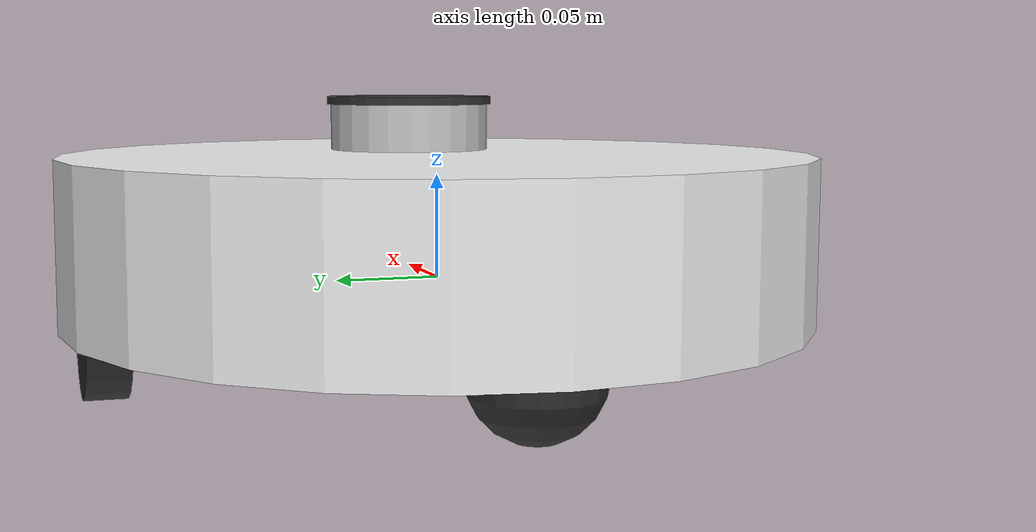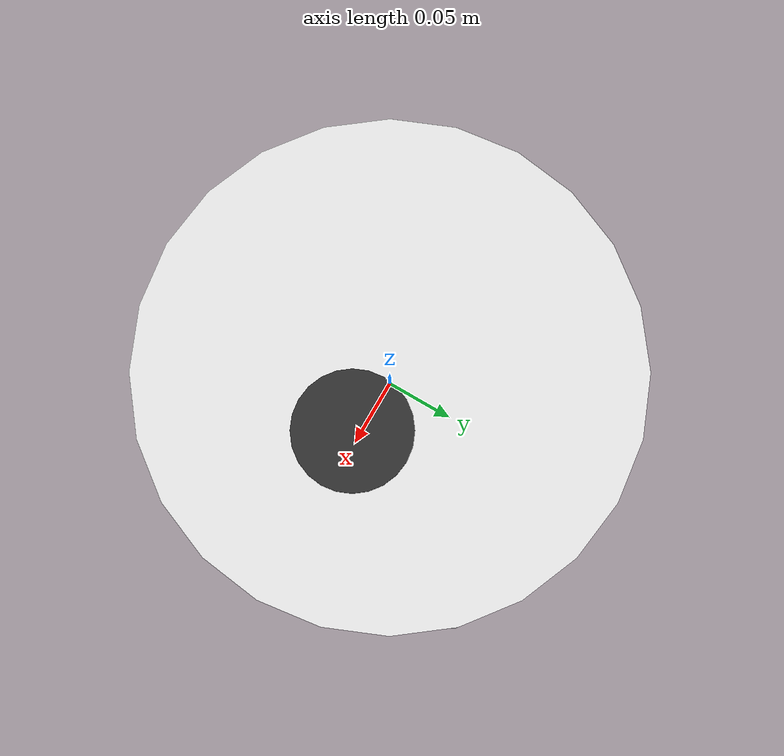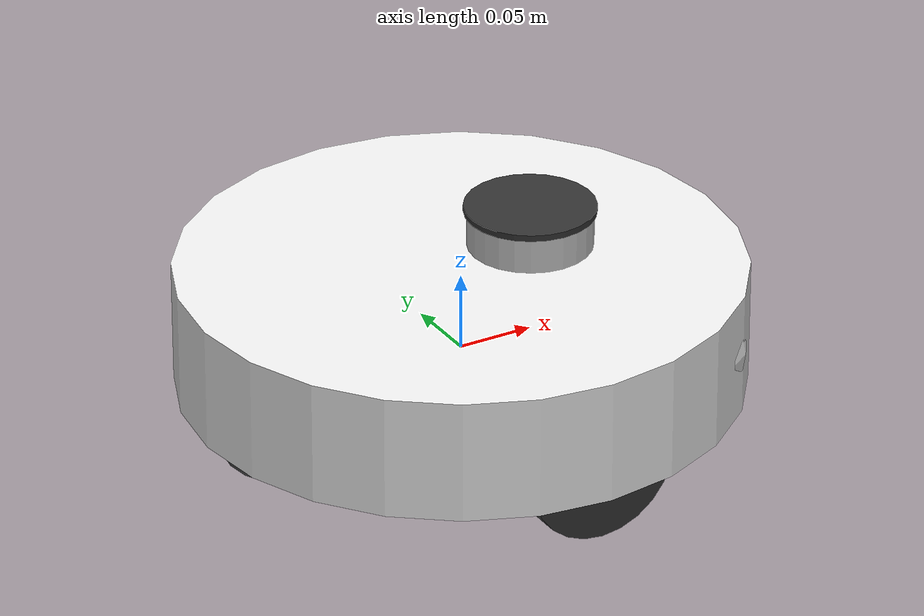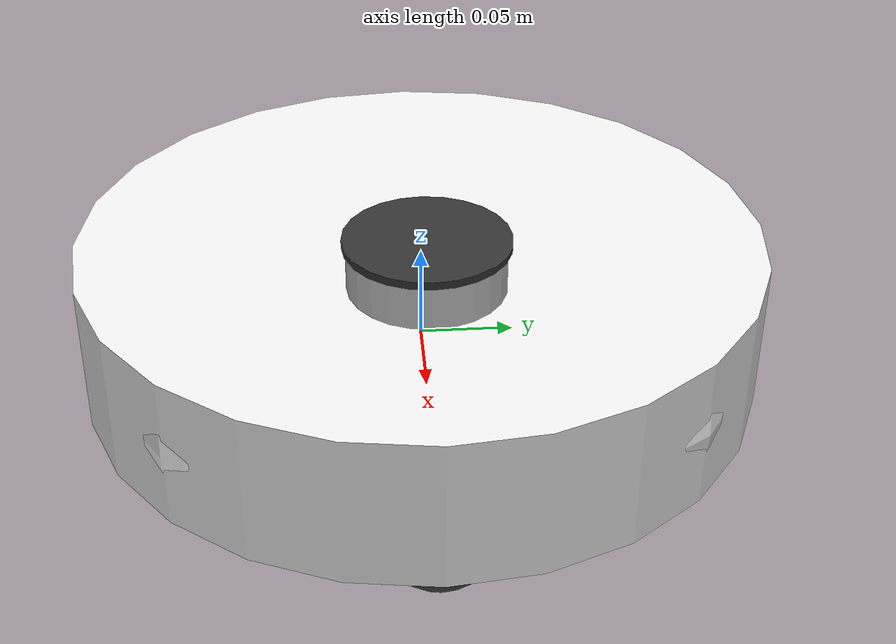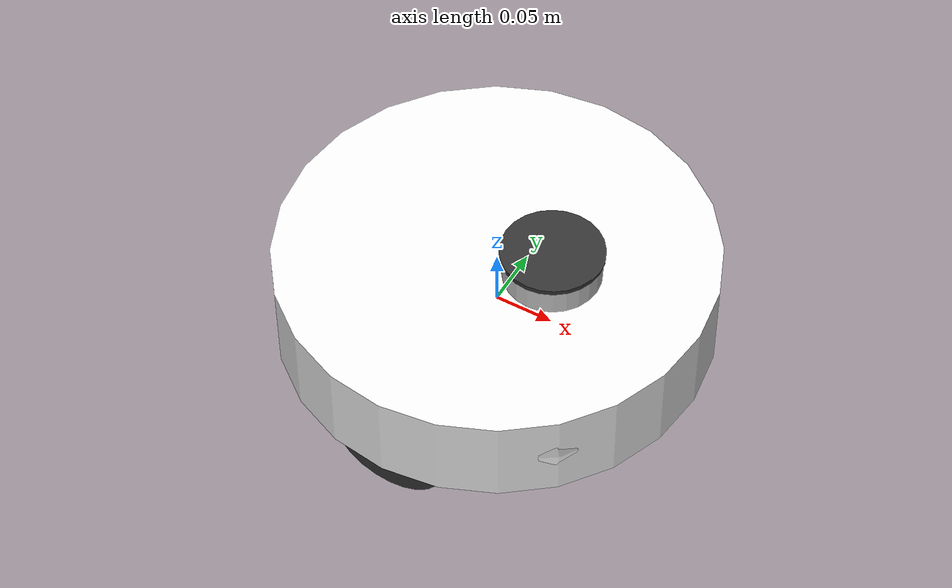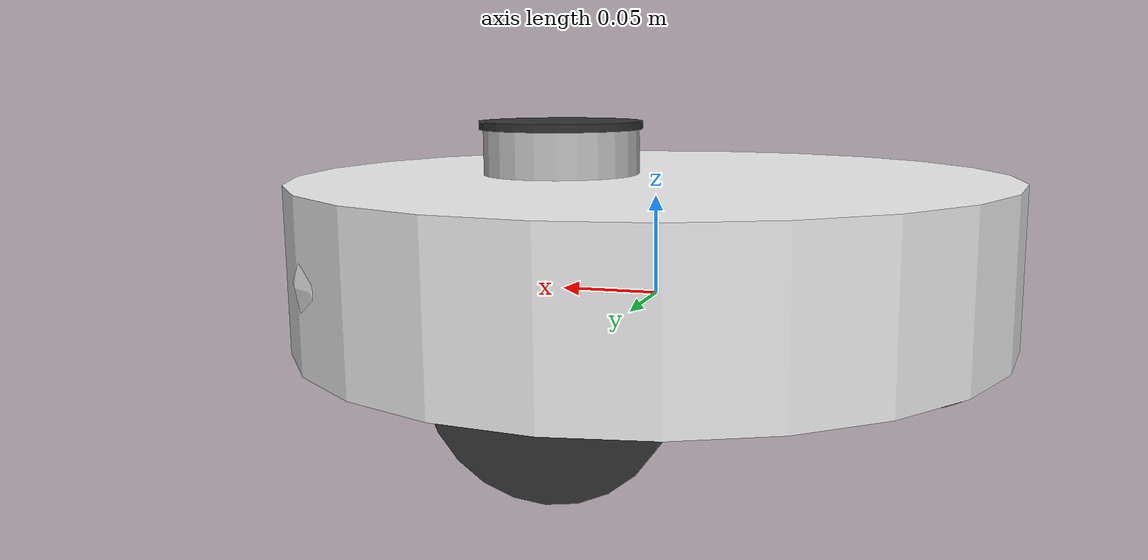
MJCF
<mujoco model="robot_vacuum_standalone">
  <include file="robot_vacuum_defaults.xml"/>

  <asset>
    <include file="robot_vacuum_assets.xml"/>
  </asset>

  <worldbody>
    <body name="robot_vacuum_root">
      <freejoint/>
      <include file="robot_vacuum_body.xml"/>
    </body>
  </worldbody>

  <actuator>
    <include file="robot_vacuum_actuators.xml"/>
  </actuator>

  <sensor>
    <include file="robot_vacuum_sensors.xml"/>
  </sensor>
</mujoco>

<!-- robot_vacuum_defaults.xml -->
<mujocoinclude>
  <default>
    <default class="robot_vacuum">
      <geom condim="3" friction="0.7 0.005 0.005"/>
      <joint damping="0.1"/>
    </default>

    <default class="robot_vacuum_wheel">
      <geom type="cylinder" size="0.05 0.01" material="rv_mat_wheel" friction="1.5 0.005 0.005"/>
    </default>

    <default class="robot_vacuum_caster">
      <geom type="sphere" size="0.03" material="rv_mat_wheel" friction="0 0 0" condim="1"/>
    </default>
  </default>
</mujocoinclude>

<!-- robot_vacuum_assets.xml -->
<mujocoinclude>
  <texture name="rv_tex_body_white" type="cube" builtin="flat" rgb1="0.95 0.95 0.95" width="128" height="128"/>
  <texture name="rv_tex_sensor_metal" type="cube" builtin="flat" rgb1="0.8 0.8 0.8" width="128" height="128"/>
  <texture name="rv_tex_wheel_dark" type="cube" builtin="flat" rgb1="0.2 0.2 0.2" width="128" height="128"/>

  <material name="rv_mat_body" texture="rv_tex_body_white" reflectance="0.1"/>
  <material name="rv_mat_sensor" texture="rv_tex_sensor_metal" reflectance="0.5" shininess="0.8"/>
  <material name="rv_mat_wheel" texture="rv_tex_wheel_dark" reflectance="0.0"/>
</mujocoinclude>

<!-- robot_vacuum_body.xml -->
<mujocoinclude>
  <body name="robot_vacuum" childclass="robot_vacuum">
    <geom name="rv_chassis" type="cylinder" size="0.18 0.04" pos="0 0 0.02" material="rv_mat_body" density="500"/>

    <geom name="rv_lidar" type="cylinder" size="0.04 0.015" pos="0.05 0 0.07" material="rv_mat_sensor"/>
    <geom name="rv_lidar_cap" type="cylinder" size="0.042 0.002" pos="0.05 0 0.085" material="rv_mat_wheel"/>

    <site name="rv_site_lidar_center" pos="0.1 0 0.05" zaxis="1 0 0" size="0.01" rgba="1 0 0 0.5"/>
    <site name="rv_site_lidar_left" pos="0.09 0.05 0.05" zaxis="0.866 0.5 0" size="0.01" rgba="1 0 0 0.5"/>
    <site name="rv_site_lidar_right" pos="0.09 -0.05 0.05" zaxis="0.866 -0.5 0" size="0.01" rgba="1 0 0 0.5"/>

    <site name="rv_scan_000" pos="0.0 0.0 0.05" zaxis="1.000000 0.000000 0" size="0.005" rgba="0 1 0 0.1"/>
    <site name="rv_scan_010" pos="0.0 0.0 0.05" zaxis="0.984808 0.173648 0" size="0.005" rgba="0 1 0 0.1"/>
    <site name="rv_scan_020" pos="0.0 0.0 0.05" zaxis="0.939693 0.342020 0" size="0.005" rgba="0 1 0 0.1"/>
    <site name="rv_scan_030" pos="0.0 0.0 0.05" zaxis="0.866025 0.500000 0" size="0.005" rgba="0 1 0 0.1"/>
    <site name="rv_scan_040" pos="0.0 0.0 0.05" zaxis="0.766044 0.642788 0" size="0.005" rgba="0 1 0 0.1"/>
    <site name="rv_scan_050" pos="0.0 0.0 0.05" zaxis="0.642788 0.766044 0" size="0.005" rgba="0 1 0 0.1"/>
    <site name="rv_scan_060" pos="0.0 0.0 0.05" zaxis="0.500000 0.866025 0" size="0.005" rgba="0 1 0 0.1"/>
    <site name="rv_scan_070" pos="0.0 0.0 0.05" zaxis="0.342020 0.939693 0" size="0.005" rgba="0 1 0 0.1"/>
    <site name="rv_scan_080" pos="0.0 0.0 0.05" zaxis="0.173648 0.984808 0" size="0.005" rgba="0 1 0 0.1"/>
    <site name="rv_scan_090" pos="0.0 0.0 0.05" zaxis="0.000000 1.000000 0" size="0.005" rgba="0 1 0 0.1"/>
    <site name="rv_scan_100" pos="0.0 0.0 0.05" zaxis="-0.173648 0.984808 0" size="0.005" rgba="0 1 0 0.1"/>
    <site name="rv_scan_110" pos="0.0 0.0 0.05" zaxis="-0.342020 0.939693 0" size="0.005" rgba="0 1 0 0.1"/>
    <site name="rv_scan_120" pos="0.0 0.0 0.05" zaxis="-0.500000 0.866025 0" size="0.005" rgba="0 1 0 0.1"/>
    <site name="rv_scan_130" pos="0.0 0.0 0.05" zaxis="-0.642788 0.766044 0" size="0.005" rgba="0 1 0 0.1"/>
    <site name="rv_scan_140" pos="0.0 0.0 0.05" zaxis="-0.766044 0.642788 0" size="0.005" rgba="0 1 0 0.1"/>
    <site name="rv_scan_150" pos="0.0 0.0 0.05" zaxis="-0.866025 0.500000 0" size="0.005" rgba="0 1 0 0.1"/>
    <site name="rv_scan_160" pos="0.0 0.0 0.05" zaxis="-0.939693 0.342020 0" size="0.005" rgba="0 1 0 0.1"/>
    <site name="rv_scan_170" pos="0.0 0.0 0.05" zaxis="-0.984808 0.173648 0" size="0.005" rgba="0 1 0 0.1"/>
    <site name="rv_scan_180" pos="0.0 0.0 0.05" zaxis="-1.000000 0.000000 0" size="0.005" rgba="0 1 0 0.1"/>
    <site name="rv_scan_190" pos="0.0 0.0 0.05" zaxis="-0.984808 -0.173648 0" size="0.005" rgba="0 1 0 0.1"/>
    <site name="rv_scan_200" pos="0.0 0.0 0.05" zaxis="-0.939693 -0.342020 0" size="0.005" rgba="0 1 0 0.1"/>
    <site name="rv_scan_210" pos="0.0 0.0 0.05" zaxis="-0.866025 -0.500000 0" size="0.005" rgba="0 1 0 0.1"/>
    <site name="rv_scan_220" pos="0.0 0.0 0.05" zaxis="-0.766044 -0.642788 0" size="0.005" rgba="0 1 0 0.1"/>
    <site name="rv_scan_230" pos="0.0 0.0 0.05" zaxis="-0.642788 -0.766044 0" size="0.005" rgba="0 1 0 0.1"/>
    <site name="rv_scan_240" pos="0.0 0.0 0.05" zaxis="-0.500000 -0.866025 0" size="0.005" rgba="0 1 0 0.1"/>
    <site name="rv_scan_250" pos="0.0 0.0 0.05" zaxis="-0.342020 -0.939693 0" size="0.005" rgba="0 1 0 0.1"/>
    <site name="rv_scan_260" pos="0.0 0.0 0.05" zaxis="-0.173648 -0.984808 0" size="0.005" rgba="0 1 0 0.1"/>
    <site name="rv_scan_270" pos="0.0 0.0 0.05" zaxis="0.000000 -1.000000 0" size="0.005" rgba="0 1 0 0.1"/>
    <site name="rv_scan_280" pos="0.0 0.0 0.05" zaxis="0.173648 -0.984808 0" size="0.005" rgba="0 1 0 0.1"/>
    <site name="rv_scan_290" pos="0.0 0.0 0.05" zaxis="0.342020 -0.939693 0" size="0.005" rgba="0 1 0 0.1"/>
    <site name="rv_scan_300" pos="0.0 0.0 0.05" zaxis="0.500000 -0.866025 0" size="0.005" rgba="0 1 0 0.1"/>
    <site name="rv_scan_310" pos="0.0 0.0 0.05" zaxis="0.642788 -0.766044 0" size="0.005" rgba="0 1 0 0.1"/>
    <site name="rv_scan_320" pos="0.0 0.0 0.05" zaxis="0.766044 -0.642788 0" size="0.005" rgba="0 1 0 0.1"/>
    <site name="rv_scan_330" pos="0.0 0.0 0.05" zaxis="0.866025 -0.500000 0" size="0.005" rgba="0 1 0 0.1"/>
    <site name="rv_scan_340" pos="0.0 0.0 0.05" zaxis="0.939693 -0.342020 0" size="0.005" rgba="0 1 0 0.1"/>
    <site name="rv_scan_350" pos="0.0 0.0 0.05" zaxis="0.984808 -0.173648 0" size="0.005" rgba="0 1 0 0.1"/>

    <geom name="rv_bumper" type="capsule" size="0.04 0.05" fromto="0.1 0.1 0.02 0.1 -0.1 0.02" material="rv_mat_body"/>

    <body name="rv_left_wheel" pos="0 0.16 0" zaxis="0 1 0">
      <joint name="rv_left_wheel_joint" type="hinge" axis="0 0 1" damping="0.5" armature="0.01"/>
      <geom class="robot_vacuum_wheel"/>
    </body>

    <body name="rv_right_wheel" pos="0 -0.16 0" zaxis="0 1 0">
      <joint name="rv_right_wheel_joint" type="hinge" axis="0 0 1" damping="0.5" armature="0.01"/>
      <geom class="robot_vacuum_wheel"/>
    </body>

    <body name="rv_caster_front" pos="0.14 0 -0.02">
      <geom class="robot_vacuum_caster"/>
    </body>

    <body name="rv_caster_back" pos="-0.14 0 -0.02">
      <geom class="robot_vacuum_caster"/>
    </body>
  </body>
</mujocoinclude>

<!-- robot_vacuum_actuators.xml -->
<mujocoinclude>
  <velocity name="rv_actuator_left" joint="rv_left_wheel_joint" kv="10" ctrlrange="-10 10"/>
  <velocity name="rv_actuator_right" joint="rv_right_wheel_joint" kv="10" ctrlrange="-10 10"/>
</mujocoinclude>

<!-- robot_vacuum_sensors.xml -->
<mujocoinclude>
  <rangefinder name="rv_sensor_center" site="rv_site_lidar_center"/>
  <rangefinder name="rv_sensor_left" site="rv_site_lidar_left"/>
  <rangefinder name="rv_sensor_right" site="rv_site_lidar_right"/>
  <rangefinder name="rv_scan_000" site="rv_scan_000"/>
  <rangefinder name="rv_scan_010" site="rv_scan_010"/>
  <rangefinder name="rv_scan_020" site="rv_scan_020"/>
  <rangefinder name="rv_scan_030" site="rv_scan_030"/>
  <rangefinder name="rv_scan_040" site="rv_scan_040"/>
  <rangefinder name="rv_scan_050" site="rv_scan_050"/>
  <rangefinder name="rv_scan_060" site="rv_scan_060"/>
  <rangefinder name="rv_scan_070" site="rv_scan_070"/>
  <rangefinder name="rv_scan_080" site="rv_scan_080"/>
  <rangefinder name="rv_scan_090" site="rv_scan_090"/>
  <rangefinder name="rv_scan_100" site="rv_scan_100"/>
  <rangefinder name="rv_scan_110" site="rv_scan_110"/>
  <rangefinder name="rv_scan_120" site="rv_scan_120"/>
  <rangefinder name="rv_scan_130" site="rv_scan_130"/>
  <rangefinder name="rv_scan_140" site="rv_scan_140"/>
  <rangefinder name="rv_scan_150" site="rv_scan_150"/>
  <rangefinder name="rv_scan_160" site="rv_scan_160"/>
  <rangefinder name="rv_scan_170" site="rv_scan_170"/>
  <rangefinder name="rv_scan_180" site="rv_scan_180"/>
  <rangefinder name="rv_scan_190" site="rv_scan_190"/>
  <rangefinder name="rv_scan_200" site="rv_scan_200"/>
  <rangefinder name="rv_scan_210" site="rv_scan_210"/>
  <rangefinder name="rv_scan_220" site="rv_scan_220"/>
  <rangefinder name="rv_scan_230" site="rv_scan_230"/>
  <rangefinder name="rv_scan_240" site="rv_scan_240"/>
  <rangefinder name="rv_scan_250" site="rv_scan_250"/>
  <rangefinder name="rv_scan_260" site="rv_scan_260"/>
  <rangefinder name="rv_scan_270" site="rv_scan_270"/>
  <rangefinder name="rv_scan_280" site="rv_scan_280"/>
  <rangefinder name="rv_scan_290" site="rv_scan_290"/>
  <rangefinder name="rv_scan_300" site="rv_scan_300"/>
  <rangefinder name="rv_scan_310" site="rv_scan_310"/>
  <rangefinder name="rv_scan_320" site="rv_scan_320"/>
  <rangefinder name="rv_scan_330" site="rv_scan_330"/>
  <rangefinder name="rv_scan_340" site="rv_scan_340"/>
  <rangefinder name="rv_scan_350" site="rv_scan_350"/>
</mujocoinclude>
